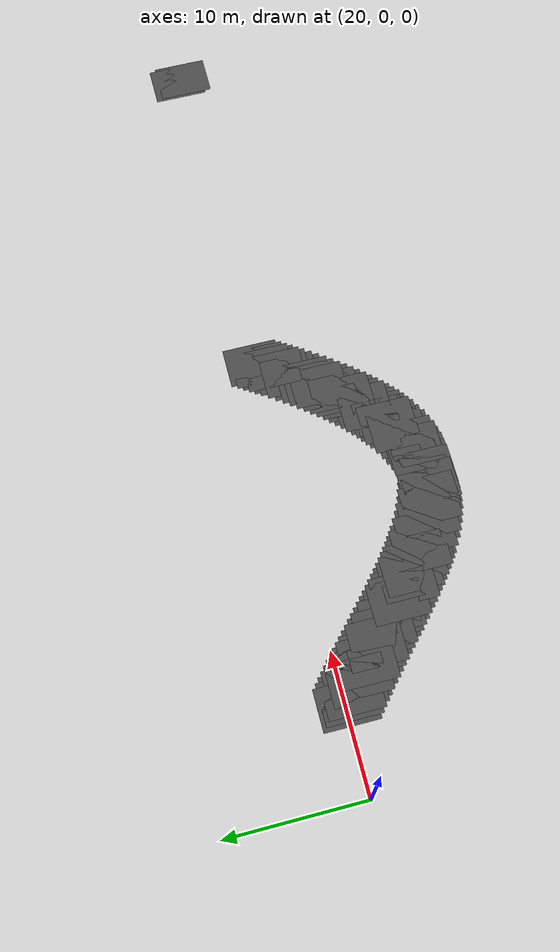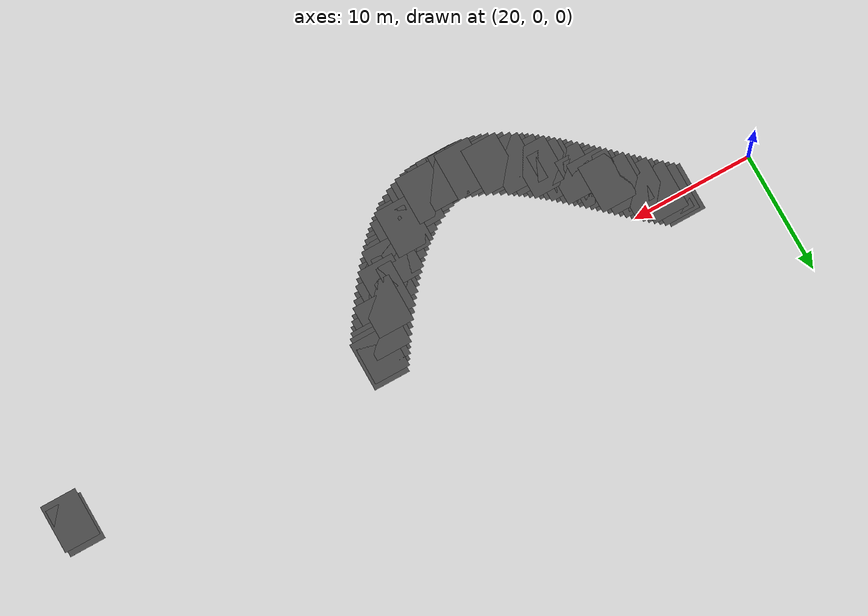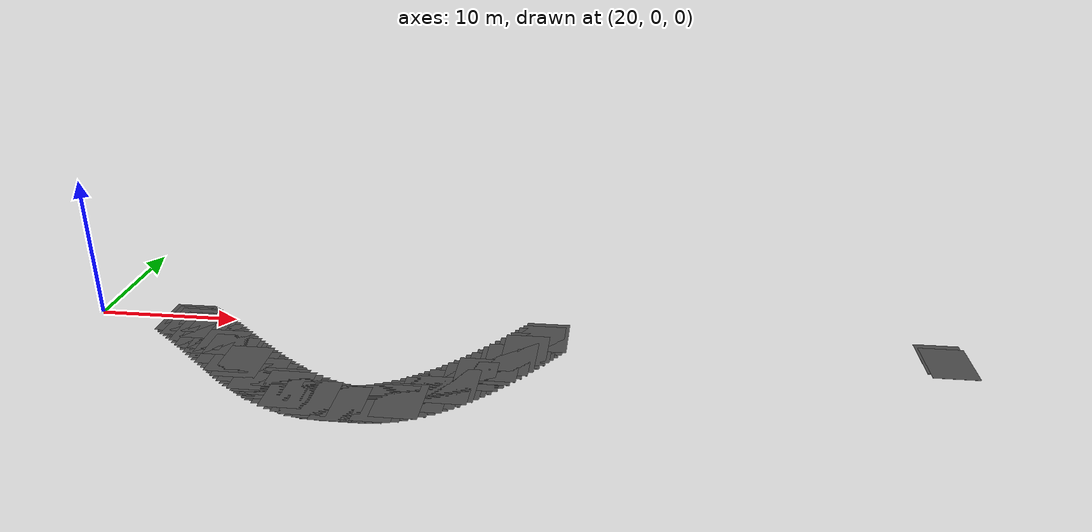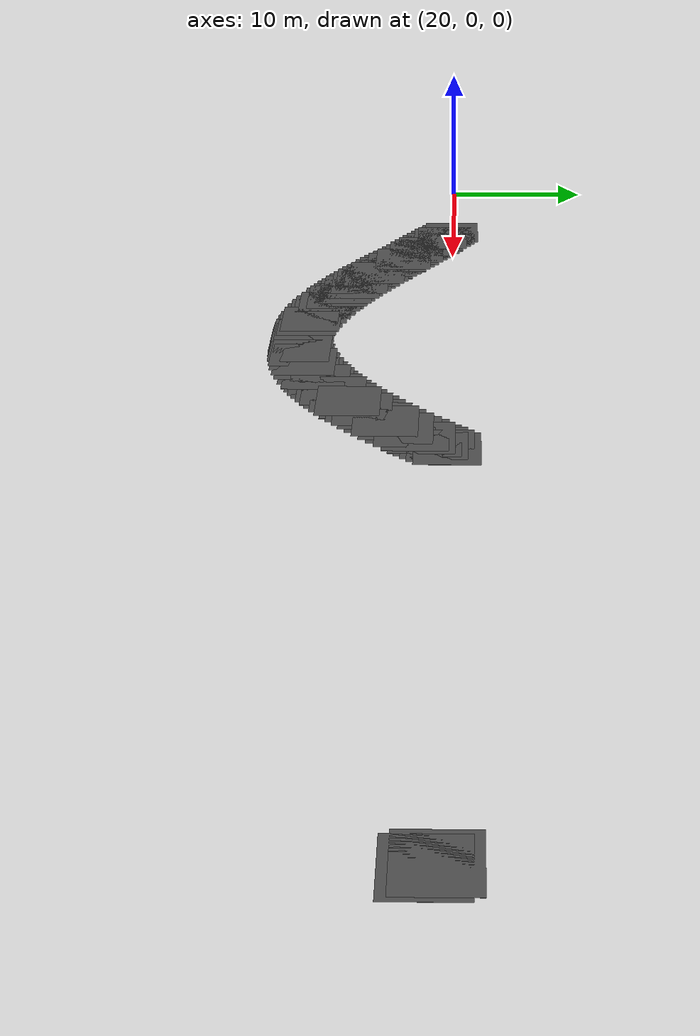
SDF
<sdf version="1.7">
 <world name="default">
  <model name="roadSegment_26_1">
   <static>1</static>
   <link name="link">
    <collision name="collision"><geometry><box><size>3 4 0.01</size></box></geometry></collision>
    <visual name="visual">
     <cast_shadows>0</cast_shadows>
     <geometry><box><size>3 4 0.01</size></box></geometry>
     <material>
      <script>
       <uri>model://asphalt_plane/materials/scripts</uri>
       <uri>model://asphalt_plane/materials/textures</uri>
       <name>vrc/asphalt</name>
      </script>
     </material>
    </visual>
   </link>
   <pose>26.3333 -0.13581 0 0 -0 0</pose>
  </model>
  <model name="roadSegment_26_2">
   <static>1</static>
   <link name="link">
    <collision name="collision"><geometry><box><size>3 4 0.01</size></box></geometry></collision>
    <visual name="visual">
     <cast_shadows>0</cast_shadows>
     <geometry><box><size>3 4 0.01</size></box></geometry>
     <material>
      <script>
       <uri>model://asphalt_plane/materials/scripts</uri>
       <uri>model://asphalt_plane/materials/textures</uri>
       <name>vrc/asphalt</name>
      </script>
     </material>
    </visual>
   </link>
   <pose>26.6667 -0.403848 0 0 -0 0</pose>
  </model>
  <model name="roadSegment_27_0">
   <static>1</static>
   <link name="link">
    <collision name="collision"><geometry><box><size>3 4 0.01</size></box></geometry></collision>
    <visual name="visual">
     <cast_shadows>0</cast_shadows>
     <geometry><box><size>3 4 0.01</size></box></geometry>
     <material>
      <script>
       <uri>model://asphalt_plane/materials/scripts</uri>
       <uri>model://asphalt_plane/materials/textures</uri>
       <name>vrc/asphalt</name>
      </script>
     </material>
    </visual>
   </link>
   <pose>27 -0.671887 0 0 -0 0</pose>
  </model>
  <model name="roadSegment_27_1">
   <static>1</static>
   <link name="link">
    <collision name="collision"><geometry><box><size>3 4 0.01</size></box></geometry></collision>
    <visual name="visual">
     <cast_shadows>0</cast_shadows>
     <geometry><box><size>3 4 0.01</size></box></geometry>
     <material>
      <script>
       <uri>model://asphalt_plane/materials/scripts</uri>
       <uri>model://asphalt_plane/materials/textures</uri>
       <name>vrc/asphalt</name>
      </script>
     </material>
    </visual>
   </link>
   <pose>27.3333 -0.956562 0 0 -0 0</pose>
  </model>
  <model name="roadSegment_27_2">
   <static>1</static>
   <link name="link">
    <collision name="collision"><geometry><box><size>3 4 0.01</size></box></geometry></collision>
    <visual name="visual">
     <cast_shadows>0</cast_shadows>
     <geometry><box><size>3 4 0.01</size></box></geometry>
     <material>
      <script>
       <uri>model://asphalt_plane/materials/scripts</uri>
       <uri>model://asphalt_plane/materials/textures</uri>
       <name>vrc/asphalt</name>
      </script>
     </material>
    </visual>
   </link>
   <pose>27.6667 -1.24124 0 0 -0 0</pose>
  </model>
  <model name="roadSegment_28_0">
   <static>1</static>
   <link name="link">
    <collision name="collision"><geometry><box><size>3 4 0.01</size></box></geometry></collision>
    <visual name="visual">
     <cast_shadows>0</cast_shadows>
     <geometry><box><size>3 4 0.01</size></box></geometry>
     <material>
      <script>
       <uri>model://asphalt_plane/materials/scripts</uri>
       <uri>model://asphalt_plane/materials/textures</uri>
       <name>vrc/asphalt</name>
      </script>
     </material>
    </visual>
   </link>
   <pose>28 -1.52591 0 0 -0 0</pose>
  </model>
  <model name="roadSegment_28_1">
   <static>1</static>
   <link name="link">
    <collision name="collision"><geometry><box><size>3 4 0.01</size></box></geometry></collision>
    <visual name="visual">
     <cast_shadows>0</cast_shadows>
     <geometry><box><size>3 4 0.01</size></box></geometry>
     <material>
      <script>
       <uri>model://asphalt_plane/materials/scripts</uri>
       <uri>model://asphalt_plane/materials/textures</uri>
       <name>vrc/asphalt</name>
      </script>
     </material>
    </visual>
   </link>
   <pose>28.3333 -1.82275 0 0 -0 0</pose>
  </model>
  <model name="roadSegment_28_2">
   <static>1</static>
   <link name="link">
    <collision name="collision"><geometry><box><size>3 4 0.01</size></box></geometry></collision>
    <visual name="visual">
     <cast_shadows>0</cast_shadows>
     <geometry><box><size>3 4 0.01</size></box></geometry>
     <material>
      <script>
       <uri>model://asphalt_plane/materials/scripts</uri>
       <uri>model://asphalt_plane/materials/textures</uri>
       <name>vrc/asphalt</name>
      </script>
     </material>
    </visual>
   </link>
   <pose>28.6667 -2.11958 0 0 -0 0</pose>
  </model>
  <model name="roadSegment_29_0">
   <static>1</static>
   <link name="link">
    <collision name="collision"><geometry><box><size>3 4 0.01</size></box></geometry></collision>
    <visual name="visual">
     <cast_shadows>0</cast_shadows>
     <geometry><box><size>3 4 0.01</size></box></geometry>
     <material>
      <script>
       <uri>model://asphalt_plane/materials/scripts</uri>
       <uri>model://asphalt_plane/materials/textures</uri>
       <name>vrc/asphalt</name>
      </script>
     </material>
    </visual>
   </link>
   <pose>29 -2.41641 0 0 -0 0</pose>
  </model>
  <model name="roadSegment_29_1">
   <static>1</static>
   <link name="link">
    <collision name="collision"><geometry><box><size>3 4 0.01</size></box></geometry></collision>
    <visual name="visual">
     <cast_shadows>0</cast_shadows>
     <geometry><box><size>3 4 0.01</size></box></geometry>
     <material>
      <script>
       <uri>model://asphalt_plane/materials/scripts</uri>
       <uri>model://asphalt_plane/materials/textures</uri>
       <name>vrc/asphalt</name>
      </script>
     </material>
    </visual>
   </link>
   <pose>29.3333 -2.72047 0 0 -0 0</pose>
  </model>
  <model name="roadSegment_29_2">
   <static>1</static>
   <link name="link">
    <collision name="collision"><geometry><box><size>3 4 0.01</size></box></geometry></collision>
    <visual name="visual">
     <cast_shadows>0</cast_shadows>
     <geometry><box><size>3 4 0.01</size></box></geometry>
     <material>
      <script>
       <uri>model://asphalt_plane/materials/scripts</uri>
       <uri>model://asphalt_plane/materials/textures</uri>
       <name>vrc/asphalt</name>
      </script>
     </material>
    </visual>
   </link>
   <pose>29.6667 -3.02453 0 0 -0 0</pose>
  </model>
  <model name="roadSegment_30_0">
   <static>1</static>
   <link name="link">
    <collision name="collision"><geometry><box><size>3 4 0.01</size></box></geometry></collision>
    <visual name="visual">
     <cast_shadows>0</cast_shadows>
     <geometry><box><size>3 4 0.01</size></box></geometry>
     <material>
      <script>
       <uri>model://asphalt_plane/materials/scripts</uri>
       <uri>model://asphalt_plane/materials/textures</uri>
       <name>vrc/asphalt</name>
      </script>
     </material>
    </visual>
   </link>
   <pose>30 -3.32859 0 0 -0 0</pose>
  </model>
  <model name="roadSegment_30_1">
   <static>1</static>
   <link name="link">
    <collision name="collision"><geometry><box><size>3 4 0.01</size></box></geometry></collision>
    <visual name="visual">
     <cast_shadows>0</cast_shadows>
     <geometry><box><size>3 4 0.01</size></box></geometry>
     <material>
      <script>
       <uri>model://asphalt_plane/materials/scripts</uri>
       <uri>model://asphalt_plane/materials/textures</uri>
       <name>vrc/asphalt</name>
      </script>
     </material>
    </visual>
   </link>
   <pose>30.3333 -3.63456 0 0 -0 0</pose>
  </model>
  <model name="roadSegment_30_2">
   <static>1</static>
   <link name="link">
    <collision name="collision"><geometry><box><size>3 4 0.01</size></box></geometry></collision>
    <visual name="visual">
     <cast_shadows>0</cast_shadows>
     <geometry><box><size>3 4 0.01</size></box></geometry>
     <material>
      <script>
       <uri>model://asphalt_plane/materials/scripts</uri>
       <uri>model://asphalt_plane/materials/textures</uri>
       <name>vrc/asphalt</name>
      </script>
     </material>
    </visual>
   </link>
   <pose>30.6667 -3.94054 0 0 -0 0</pose>
  </model>
  <model name="roadSegment_31_0">
   <static>1</static>
   <link name="link">
    <collision name="collision"><geometry><box><size>3 4 0.01</size></box></geometry></collision>
    <visual name="visual">
     <cast_shadows>0</cast_shadows>
     <geometry><box><size>3 4 0.01</size></box></geometry>
     <material>
      <script>
       <uri>model://asphalt_plane/materials/scripts</uri>
       <uri>model://asphalt_plane/materials/textures</uri>
       <name>vrc/asphalt</name>
      </script>
     </material>
    </visual>
   </link>
   <pose>31 -4.24651 0 0 -0 0</pose>
  </model>
  <model name="roadSegment_31_1">
   <static>1</static>
   <link name="link">
    <collision name="collision"><geometry><box><size>3 4 0.01</size></box></geometry></collision>
    <visual name="visual">
     <cast_shadows>0</cast_shadows>
     <geometry><box><size>3 4 0.01</size></box></geometry>
     <material>
      <script>
       <uri>model://asphalt_plane/materials/scripts</uri>
       <uri>model://asphalt_plane/materials/textures</uri>
       <name>vrc/asphalt</name>
      </script>
     </material>
    </visual>
   </link>
   <pose>31.3333 -4.54881 0 0 -0 0</pose>
  </model>
  <model name="roadSegment_31_2">
   <static>1</static>
   <link name="link">
    <collision name="collision"><geometry><box><size>3 4 0.01</size></box></geometry></collision>
    <visual name="visual">
     <cast_shadows>0</cast_shadows>
     <geometry><box><size>3 4 0.01</size></box></geometry>
     <material>
      <script>
       <uri>model://asphalt_plane/materials/scripts</uri>
       <uri>model://asphalt_plane/materials/textures</uri>
       <name>vrc/asphalt</name>
      </script>
     </material>
    </visual>
   </link>
   <pose>31.6667 -4.8511 0 0 -0 0</pose>
  </model>
  <model name="roadSegment_32_0">
   <static>1</static>
   <link name="link">
    <collision name="collision"><geometry><box><size>3 4 0.01</size></box></geometry></collision>
    <visual name="visual">
     <cast_shadows>0</cast_shadows>
     <geometry><box><size>3 4 0.01</size></box></geometry>
     <material>
      <script>
       <uri>model://asphalt_plane/materials/scripts</uri>
       <uri>model://asphalt_plane/materials/textures</uri>
       <name>vrc/asphalt</name>
      </script>
     </material>
    </visual>
   </link>
   <pose>32 -5.1534 0 0 -0 0</pose>
  </model>
  <model name="roadSegment_32_1">
   <static>1</static>
   <link name="link">
    <collision name="collision"><geometry><box><size>3 4 0.01</size></box></geometry></collision>
    <visual name="visual">
     <cast_shadows>0</cast_shadows>
     <geometry><box><size>3 4 0.01</size></box></geometry>
     <material>
      <script>
       <uri>model://asphalt_plane/materials/scripts</uri>
       <uri>model://asphalt_plane/materials/textures</uri>
       <name>vrc/asphalt</name>
      </script>
     </material>
    </visual>
   </link>
   <pose>32.3333 -5.44624 0 0 -0 0</pose>
  </model>
  <model name="roadSegment_32_2">
   <static>1</static>
   <link name="link">
    <collision name="collision"><geometry><box><size>3 4 0.01</size></box></geometry></collision>
    <visual name="visual">
     <cast_shadows>0</cast_shadows>
     <geometry><box><size>3 4 0.01</size></box></geometry>
     <material>
      <script>
       <uri>model://asphalt_plane/materials/scripts</uri>
       <uri>model://asphalt_plane/materials/textures</uri>
       <name>vrc/asphalt</name>
      </script>
     </material>
    </visual>
   </link>
   <pose>32.6667 -5.73907 0 0 -0 0</pose>
  </model>
  <model name="roadSegment_33_0">
   <static>1</static>
   <link name="link">
    <collision name="collision"><geometry><box><size>3 4 0.01</size></box></geometry></collision>
    <visual name="visual">
     <cast_shadows>0</cast_shadows>
     <geometry><box><size>3 4 0.01</size></box></geometry>
     <material>
      <script>
       <uri>model://asphalt_plane/materials/scripts</uri>
       <uri>model://asphalt_plane/materials/textures</uri>
       <name>vrc/asphalt</name>
      </script>
     </material>
    </visual>
   </link>
   <pose>33 -6.03191 0 0 -0 0</pose>
  </model>
  <model name="roadSegment_33_1">
   <static>1</static>
   <link name="link">
    <collision name="collision"><geometry><box><size>3 4 0.01</size></box></geometry></collision>
    <visual name="visual">
     <cast_shadows>0</cast_shadows>
     <geometry><box><size>3 4 0.01</size></box></geometry>
     <material>
      <script>
       <uri>model://asphalt_plane/materials/scripts</uri>
       <uri>model://asphalt_plane/materials/textures</uri>
       <name>vrc/asphalt</name>
      </script>
     </material>
    </visual>
   </link>
   <pose>33.3333 -6.30942 0 0 -0 0</pose>
  </model>
  <model name="roadSegment_33_2">
   <static>1</static>
   <link name="link">
    <collision name="collision"><geometry><box><size>3 4 0.01</size></box></geometry></collision>
    <visual name="visual">
     <cast_shadows>0</cast_shadows>
     <geometry><box><size>3 4 0.01</size></box></geometry>
     <material>
      <script>
       <uri>model://asphalt_plane/materials/scripts</uri>
       <uri>model://asphalt_plane/materials/textures</uri>
       <name>vrc/asphalt</name>
      </script>
     </material>
    </visual>
   </link>
   <pose>33.6667 -6.58693 0 0 -0 0</pose>
  </model>
  <model name="roadSegment_34_0">
   <static>1</static>
   <link name="link">
    <collision name="collision"><geometry><box><size>3 4 0.01</size></box></geometry></collision>
    <visual name="visual">
     <cast_shadows>0</cast_shadows>
     <geometry><box><size>3 4 0.01</size></box></geometry>
     <material>
      <script>
       <uri>model://asphalt_plane/materials/scripts</uri>
       <uri>model://asphalt_plane/materials/textures</uri>
       <name>vrc/asphalt</name>
      </script>
     </material>
    </visual>
   </link>
   <pose>34 -6.86444 0 0 -0 0</pose>
  </model>
  <model name="roadSegment_34_1">
   <static>1</static>
   <link name="link">
    <collision name="collision"><geometry><box><size>3 4 0.01</size></box></geometry></collision>
    <visual name="visual">
     <cast_shadows>0</cast_shadows>
     <geometry><box><size>3 4 0.01</size></box></geometry>
     <material>
      <script>
       <uri>model://asphalt_plane/materials/scripts</uri>
       <uri>model://asphalt_plane/materials/textures</uri>
       <name>vrc/asphalt</name>
      </script>
     </material>
    </visual>
   </link>
   <pose>34.3333 -7.12079 0 0 -0 0</pose>
  </model>
  <model name="roadSegment_34_2">
   <static>1</static>
   <link name="link">
    <collision name="collision"><geometry><box><size>3 4 0.01</size></box></geometry></collision>
    <visual name="visual">
     <cast_shadows>0</cast_shadows>
     <geometry><box><size>3 4 0.01</size></box></geometry>
     <material>
      <script>
       <uri>model://asphalt_plane/materials/scripts</uri>
       <uri>model://asphalt_plane/materials/textures</uri>
       <name>vrc/asphalt</name>
      </script>
     </material>
    </visual>
   </link>
   <pose>34.6667 -7.37714 0 0 -0 0</pose>
  </model>
  <model name="roadSegment_35_0">
   <static>1</static>
   <link name="link">
    <collision name="collision"><geometry><box><size>3 4 0.01</size></box></geometry></collision>
    <visual name="visual">
     <cast_shadows>0</cast_shadows>
     <geometry><box><size>3 4 0.01</size></box></geometry>
     <material>
      <script>
       <uri>model://asphalt_plane/materials/scripts</uri>
       <uri>model://asphalt_plane/materials/textures</uri>
       <name>vrc/asphalt</name>
      </script>
     </material>
    </visual>
   </link>
   <pose>35 -7.63349 0 0 -0 0</pose>
  </model>
  <model name="roadSegment_35_1">
   <static>1</static>
   <link name="link">
    <collision name="collision"><geometry><box><size>3 4 0.01</size></box></geometry></collision>
    <visual name="visual">
     <cast_shadows>0</cast_shadows>
     <geometry><box><size>3 4 0.01</size></box></geometry>
     <material>
      <script>
       <uri>model://asphalt_plane/materials/scripts</uri>
       <uri>model://asphalt_plane/materials/textures</uri>
       <name>vrc/asphalt</name>
      </script>
     </material>
    </visual>
   </link>
   <pose>35.3333 -7.86296 0 0 -0 0</pose>
  </model>
  <model name="roadSegment_35_2">
   <static>1</static>
   <link name="link">
    <collision name="collision"><geometry><box><size>3 4 0.01</size></box></geometry></collision>
    <visual name="visual">
     <cast_shadows>0</cast_shadows>
     <geometry><box><size>3 4 0.01</size></box></geometry>
     <material>
      <script>
       <uri>model://asphalt_plane/materials/scripts</uri>
       <uri>model://asphalt_plane/materials/textures</uri>
       <name>vrc/asphalt</name>
      </script>
     </material>
    </visual>
   </link>
   <pose>35.6667 -8.09244 0 0 -0 0</pose>
  </model>
  <model name="roadSegment_36_0">
   <static>1</static>
   <link name="link">
    <collision name="collision"><geometry><box><size>3 4 0.01</size></box></geometry></collision>
    <visual name="visual">
     <cast_shadows>0</cast_shadows>
     <geometry><box><size>3 4 0.01</size></box></geometry>
     <material>
      <script>
       <uri>model://asphalt_plane/materials/scripts</uri>
       <uri>model://asphalt_plane/materials/textures</uri>
       <name>vrc/asphalt</name>
      </script>
     </material>
    </visual>
   </link>
   <pose>36 -8.32192 0 0 -0 0</pose>
  </model>
  <model name="roadSegment_36_1">
   <static>1</static>
   <link name="link">
    <collision name="collision"><geometry><box><size>3 4 0.01</size></box></geometry></collision>
    <visual name="visual">
     <cast_shadows>0</cast_shadows>
     <geometry><box><size>3 4 0.01</size></box></geometry>
     <material>
      <script>
       <uri>model://asphalt_plane/materials/scripts</uri>
       <uri>model://asphalt_plane/materials/textures</uri>
       <name>vrc/asphalt</name>
      </script>
     </material>
    </visual>
   </link>
   <pose>36.5 -8.61764 0 0 -0 0</pose>
  </model>
  <model name="roadSegment_37_0">
   <static>1</static>
   <link name="link">
    <collision name="collision"><geometry><box><size>3 4 0.01</size></box></geometry></collision>
    <visual name="visual">
     <cast_shadows>0</cast_shadows>
     <geometry><box><size>3 4 0.01</size></box></geometry>
     <material>
      <script>
       <uri>model://asphalt_plane/materials/scripts</uri>
       <uri>model://asphalt_plane/materials/textures</uri>
       <name>vrc/asphalt</name>
      </script>
     </material>
    </visual>
   </link>
   <pose>37 -8.91337 0 0 -0 0</pose>
  </model>
  <model name="roadSegment_37_1">
   <static>1</static>
   <link name="link">
    <collision name="collision"><geometry><box><size>3 4 0.01</size></box></geometry></collision>
    <visual name="visual">
     <cast_shadows>0</cast_shadows>
     <geometry><box><size>3 4 0.01</size></box></geometry>
     <material>
      <script>
       <uri>model://asphalt_plane/materials/scripts</uri>
       <uri>model://asphalt_plane/materials/textures</uri>
       <name>vrc/asphalt</name>
      </script>
     </material>
    </visual>
   </link>
   <pose>37.5 -9.15295 0 0 -0 0</pose>
  </model>
  <model name="roadSegment_38_0">
   <static>1</static>
   <link name="link">
    <collision name="collision"><geometry><box><size>3 4 0.01</size></box></geometry></collision>
    <visual name="visual">
     <cast_shadows>0</cast_shadows>
     <geometry><box><size>3 4 0.01</size></box></geometry>
     <material>
      <script>
       <uri>model://asphalt_plane/materials/scripts</uri>
       <uri>model://asphalt_plane/materials/textures</uri>
       <name>vrc/asphalt</name>
      </script>
     </material>
    </visual>
   </link>
   <pose>38 -9.39252 0 0 -0 0</pose>
  </model>
  <model name="roadSegment_38_1">
   <static>1</static>
   <link name="link">
    <collision name="collision"><geometry><box><size>3 4 0.01</size></box></geometry></collision>
    <visual name="visual">
     <cast_shadows>0</cast_shadows>
     <geometry><box><size>3 4 0.01</size></box></geometry>
     <material>
      <script>
       <uri>model://asphalt_plane/materials/scripts</uri>
       <uri>model://asphalt_plane/materials/textures</uri>
       <name>vrc/asphalt</name>
      </script>
     </material>
    </visual>
   </link>
   <pose>38.5 -9.56899 0 0 -0 0</pose>
  </model>
  <model name="roadSegment_39_0">
   <static>1</static>
   <link name="link">
    <collision name="collision"><geometry><box><size>3 4 0.01</size></box></geometry></collision>
    <visual name="visual">
     <cast_shadows>0</cast_shadows>
     <geometry><box><size>3 4 0.01</size></box></geometry>
     <material>
      <script>
       <uri>model://asphalt_plane/materials/scripts</uri>
       <uri>model://asphalt_plane/materials/textures</uri>
       <name>vrc/asphalt</name>
      </script>
     </material>
    </visual>
   </link>
   <pose>39 -9.74546 0 0 -0 0</pose>
  </model>
  <model name="roadSegment_39_1">
   <static>1</static>
   <link name="link">
    <collision name="collision"><geometry><box><size>3 4 0.01</size></box></geometry></collision>
    <visual name="visual">
     <cast_shadows>0</cast_shadows>
     <geometry><box><size>3 4 0.01</size></box></geometry>
     <material>
      <script>
       <uri>model://asphalt_plane/materials/scripts</uri>
       <uri>model://asphalt_plane/materials/textures</uri>
       <name>vrc/asphalt</name>
      </script>
     </material>
    </visual>
   </link>
   <pose>39.5 -9.8527 0 0 -0 0</pose>
  </model>
  <model name="roadSegment_40_0">
   <static>1</static>
   <link name="link">
    <collision name="collision"><geometry><box><size>3 4 0.01</size></box></geometry></collision>
    <visual name="visual">
     <cast_shadows>0</cast_shadows>
     <geometry><box><size>3 4 0.01</size></box></geometry>
     <material>
      <script>
       <uri>model://asphalt_plane/materials/scripts</uri>
       <uri>model://asphalt_plane/materials/textures</uri>
       <name>vrc/asphalt</name>
      </script>
     </material>
    </visual>
   </link>
   <pose>40 -9.95995 0 0 -0 0</pose>
  </model>
  <model name="roadSegment_40_1">
   <static>1</static>
   <link name="link">
    <collision name="collision"><geometry><box><size>3 4 0.01</size></box></geometry></collision>
    <visual name="visual">
     <cast_shadows>0</cast_shadows>
     <geometry><box><size>3 4 0.01</size></box></geometry>
     <material>
      <script>
       <uri>model://asphalt_plane/materials/scripts</uri>
       <uri>model://asphalt_plane/materials/textures</uri>
       <name>vrc/asphalt</name>
      </script>
     </material>
    </visual>
   </link>
   <pose>40.5 -9.99283 0 0 -0 0</pose>
  </model>
  <model name="roadSegment_41_0">
   <static>1</static>
   <link name="link">
    <collision name="collision"><geometry><box><size>3 4 0.01</size></box></geometry></collision>
    <visual name="visual">
     <cast_shadows>0</cast_shadows>
     <geometry><box><size>3 4 0.01</size></box></geometry>
     <material>
      <script>
       <uri>model://asphalt_plane/materials/scripts</uri>
       <uri>model://asphalt_plane/materials/textures</uri>
       <name>vrc/asphalt</name>
      </script>
     </material>
    </visual>
   </link>
   <pose>41 -10.0257 0 0 -0 0</pose>
  </model>
  <model name="roadSegment_41_1">
   <static>1</static>
   <link name="link">
    <collision name="collision"><geometry><box><size>3 4 0.01</size></box></geometry></collision>
    <visual name="visual">
     <cast_shadows>0</cast_shadows>
     <geometry><box><size>3 4 0.01</size></box></geometry>
     <material>
      <script>
       <uri>model://asphalt_plane/materials/scripts</uri>
       <uri>model://asphalt_plane/materials/textures</uri>
       <name>vrc/asphalt</name>
      </script>
     </material>
    </visual>
   </link>
   <pose>41.5 -9.98021 0 0 -0 0</pose>
  </model>
  <model name="roadSegment_42_0">
   <static>1</static>
   <link name="link">
    <collision name="collision"><geometry><box><size>3 4 0.01</size></box></geometry></collision>
    <visual name="visual">
     <cast_shadows>0</cast_shadows>
     <geometry><box><size>3 4 0.01</size></box></geometry>
     <material>
      <script>
       <uri>model://asphalt_plane/materials/scripts</uri>
       <uri>model://asphalt_plane/materials/textures</uri>
       <name>vrc/asphalt</name>
      </script>
     </material>
    </visual>
   </link>
   <pose>42 -9.93471 0 0 -0 0</pose>
  </model>
  <model name="roadSegment_42_1">
   <static>1</static>
   <link name="link">
    <collision name="collision"><geometry><box><size>3 4 0.01</size></box></geometry></collision>
    <visual name="visual">
     <cast_shadows>0</cast_shadows>
     <geometry><box><size>3 4 0.01</size></box></geometry>
     <material>
      <script>
       <uri>model://asphalt_plane/materials/scripts</uri>
       <uri>model://asphalt_plane/materials/textures</uri>
       <name>vrc/asphalt</name>
      </script>
     </material>
    </visual>
   </link>
   <pose>42.5 -9.80802 0 0 -0 0</pose>
  </model>
  <model name="roadSegment_43_0">
   <static>1</static>
   <link name="link">
    <collision name="collision"><geometry><box><size>3 4 0.01</size></box></geometry></collision>
    <visual name="visual">
     <cast_shadows>0</cast_shadows>
     <geometry><box><size>3 4 0.01</size></box></geometry>
     <material>
      <script>
       <uri>model://asphalt_plane/materials/scripts</uri>
       <uri>model://asphalt_plane/materials/textures</uri>
       <name>vrc/asphalt</name>
      </script>
     </material>
    </visual>
   </link>
   <pose>43 -9.68132 0 0 -0 0</pose>
  </model>
  <model name="roadSegment_43_1">
   <static>1</static>
   <link name="link">
    <collision name="collision"><geometry><box><size>3 4 0.01</size></box></geometry></collision>
    <visual name="visual">
     <cast_shadows>0</cast_shadows>
     <geometry><box><size>3 4 0.01</size></box></geometry>
     <material>
      <script>
       <uri>model://asphalt_plane/materials/scripts</uri>
       <uri>model://asphalt_plane/materials/textures</uri>
       <name>vrc/asphalt</name>
      </script>
     </material>
    </visual>
   </link>
   <pose>43.5 -9.47194 0 0 -0 0</pose>
  </model>
  <model name="roadSegment_44_0">
   <static>1</static>
   <link name="link">
    <collision name="collision"><geometry><box><size>3 4 0.01</size></box></geometry></collision>
    <visual name="visual">
     <cast_shadows>0</cast_shadows>
     <geometry><box><size>3 4 0.01</size></box></geometry>
     <material>
      <script>
       <uri>model://asphalt_plane/materials/scripts</uri>
       <uri>model://asphalt_plane/materials/textures</uri>
       <name>vrc/asphalt</name>
      </script>
     </material>
    </visual>
   </link>
   <pose>44 -9.26255 0 0 -0 0</pose>
  </model>
  <model name="roadSegment_44_1">
   <static>1</static>
   <link name="link">
    <collision name="collision"><geometry><box><size>3 4 0.01</size></box></geometry></collision>
    <visual name="visual">
     <cast_shadows>0</cast_shadows>
     <geometry><box><size>3 4 0.01</size></box></geometry>
     <material>
      <script>
       <uri>model://asphalt_plane/materials/scripts</uri>
       <uri>model://asphalt_plane/materials/textures</uri>
       <name>vrc/asphalt</name>
      </script>
     </material>
    </visual>
   </link>
   <pose>44.5 -8.97035 0 0 -0 0</pose>
  </model>
  <model name="roadSegment_45_0">
   <static>1</static>
   <link name="link">
    <collision name="collision"><geometry><box><size>3 4 0.01</size></box></geometry></collision>
    <visual name="visual">
     <cast_shadows>0</cast_shadows>
     <geometry><box><size>3 4 0.01</size></box></geometry>
     <material>
      <script>
       <uri>model://asphalt_plane/materials/scripts</uri>
       <uri>model://asphalt_plane/materials/textures</uri>
       <name>vrc/asphalt</name>
      </script>
     </material>
    </visual>
   </link>
   <pose>45 -8.67815 0 0 -0 0</pose>
  </model>
  <model name="roadSegment_45_1">
   <static>1</static>
   <link name="link">
    <collision name="collision"><geometry><box><size>3 4 0.01</size></box></geometry></collision>
    <visual name="visual">
     <cast_shadows>0</cast_shadows>
     <geometry><box><size>3 4 0.01</size></box></geometry>
     <material>
      <script>
       <uri>model://asphalt_plane/materials/scripts</uri>
       <uri>model://asphalt_plane/materials/textures</uri>
       <name>vrc/asphalt</name>
      </script>
     </material>
    </visual>
   </link>
   <pose>45.3333 -8.42901 0 0 -0 0</pose>
  </model>
  <model name="roadSegment_45_2">
   <static>1</static>
   <link name="link">
    <collision name="collision"><geometry><box><size>3 4 0.01</size></box></geometry></collision>
    <visual name="visual">
     <cast_shadows>0</cast_shadows>
     <geometry><box><size>3 4 0.01</size></box></geometry>
     <material>
      <script>
       <uri>model://asphalt_plane/materials/scripts</uri>
       <uri>model://asphalt_plane/materials/textures</uri>
       <name>vrc/asphalt</name>
      </script>
     </material>
    </visual>
   </link>
   <pose>45.6667 -8.17987 0 0 -0 0</pose>
  </model>
  <model name="roadSegment_46_0">
   <static>1</static>
   <link name="link">
    <collision name="collision"><geometry><box><size>3 4 0.01</size></box></geometry></collision>
    <visual name="visual">
     <cast_shadows>0</cast_shadows>
     <geometry><box><size>3 4 0.01</size></box></geometry>
     <material>
      <script>
       <uri>model://asphalt_plane/materials/scripts</uri>
       <uri>model://asphalt_plane/materials/textures</uri>
       <name>vrc/asphalt</name>
      </script>
     </material>
    </visual>
   </link>
   <pose>46 -7.93073 0 0 -0 0</pose>
  </model>
  <model name="roadSegment_46_1">
   <static>1</static>
   <link name="link">
    <collision name="collision"><geometry><box><size>3 4 0.01</size></box></geometry></collision>
    <visual name="visual">
     <cast_shadows>0</cast_shadows>
     <geometry><box><size>3 4 0.01</size></box></geometry>
     <material>
      <script>
       <uri>model://asphalt_plane/materials/scripts</uri>
       <uri>model://asphalt_plane/materials/textures</uri>
       <name>vrc/asphalt</name>
      </script>
     </material>
    </visual>
   </link>
   <pose>46.3333 -7.62909 0 0 -0 0</pose>
  </model>
  <model name="roadSegment_46_2">
   <static>1</static>
   <link name="link">
    <collision name="collision"><geometry><box><size>3 4 0.01</size></box></geometry></collision>
    <visual name="visual">
     <cast_shadows>0</cast_shadows>
     <geometry><box><size>3 4 0.01</size></box></geometry>
     <material>
      <script>
       <uri>model://asphalt_plane/materials/scripts</uri>
       <uri>model://asphalt_plane/materials/textures</uri>
       <name>vrc/asphalt</name>
      </script>
     </material>
    </visual>
   </link>
   <pose>46.6667 -7.32744 0 0 -0 0</pose>
  </model>
  <model name="roadSegment_47_0">
   <static>1</static>
   <link name="link">
    <collision name="collision"><geometry><box><size>3 4 0.01</size></box></geometry></collision>
    <visual name="visual">
     <cast_shadows>0</cast_shadows>
     <geometry><box><size>3 4 0.01</size></box></geometry>
     <material>
      <script>
       <uri>model://asphalt_plane/materials/scripts</uri>
       <uri>model://asphalt_plane/materials/textures</uri>
       <name>vrc/asphalt</name>
      </script>
     </material>
    </visual>
   </link>
   <pose>47 -7.02579 0 0 -0 0</pose>
  </model>
  <model name="roadSegment_47_1">
   <static>1</static>
   <link name="link">
    <collision name="collision"><geometry><box><size>3 4 0.01</size></box></geometry></collision>
    <visual name="visual">
     <cast_shadows>0</cast_shadows>
     <geometry><box><size>3 4 0.01</size></box></geometry>
     <material>
      <script>
       <uri>model://asphalt_plane/materials/scripts</uri>
       <uri>model://asphalt_plane/materials/textures</uri>
       <name>vrc/asphalt</name>
      </script>
     </material>
    </visual>
   </link>
   <pose>47.3333 -6.67444 0 0 -0 0</pose>
  </model>
  <model name="roadSegment_47_2">
   <static>1</static>
   <link name="link">
    <collision name="collision"><geometry><box><size>3 4 0.01</size></box></geometry></collision>
    <visual name="visual">
     <cast_shadows>0</cast_shadows>
     <geometry><box><size>3 4 0.01</size></box></geometry>
     <material>
      <script>
       <uri>model://asphalt_plane/materials/scripts</uri>
       <uri>model://asphalt_plane/materials/textures</uri>
       <name>vrc/asphalt</name>
      </script>
     </material>
    </visual>
   </link>
   <pose>47.6667 -6.32308 0 0 -0 0</pose>
  </model>
  <model name="roadSegment_48_0">
   <static>1</static>
   <link name="link">
    <collision name="collision"><geometry><box><size>3 4 0.01</size></box></geometry></collision>
    <visual name="visual">
     <cast_shadows>0</cast_shadows>
     <geometry><box><size>3 4 0.01</size></box></geometry>
     <material>
      <script>
       <uri>model://asphalt_plane/materials/scripts</uri>
       <uri>model://asphalt_plane/materials/textures</uri>
       <name>vrc/asphalt</name>
      </script>
     </material>
    </visual>
   </link>
   <pose>48 -5.97173 0 0 -0 0</pose>
  </model>
  <model name="roadSegment_48_1">
   <static>1</static>
   <link name="link">
    <collision name="collision"><geometry><box><size>3 4 0.01</size></box></geometry></collision>
    <visual name="visual">
     <cast_shadows>0</cast_shadows>
     <geometry><box><size>3 4 0.01</size></box></geometry>
     <material>
      <script>
       <uri>model://asphalt_plane/materials/scripts</uri>
       <uri>model://asphalt_plane/materials/textures</uri>
       <name>vrc/asphalt</name>
      </script>
     </material>
    </visual>
   </link>
   <pose>48.3333 -5.57441 0 0 -0 0</pose>
  </model>
  <model name="roadSegment_48_2">
   <static>1</static>
   <link name="link">
    <collision name="collision"><geometry><box><size>3 4 0.01</size></box></geometry></collision>
    <visual name="visual">
     <cast_shadows>0</cast_shadows>
     <geometry><box><size>3 4 0.01</size></box></geometry>
     <material>
      <script>
       <uri>model://asphalt_plane/materials/scripts</uri>
       <uri>model://asphalt_plane/materials/textures</uri>
       <name>vrc/asphalt</name>
      </script>
     </material>
    </visual>
   </link>
   <pose>48.6667 -5.17709 0 0 -0 0</pose>
  </model>
  <model name="roadSegment_49_0">
   <static>1</static>
   <link name="link">
    <collision name="collision"><geometry><box><size>3 4 0.01</size></box></geometry></collision>
    <visual name="visual">
     <cast_shadows>0</cast_shadows>
     <geometry><box><size>3 4 0.01</size></box></geometry>
     <material>
      <script>
       <uri>model://asphalt_plane/materials/scripts</uri>
       <uri>model://asphalt_plane/materials/textures</uri>
       <name>vrc/asphalt</name>
      </script>
     </material>
    </visual>
   </link>
   <pose>49 -4.77976 0 0 -0 0</pose>
  </model>
  <model name="roadSegment_49_1">
   <static>1</static>
   <link name="link">
    <collision name="collision"><geometry><box><size>3 4 0.01</size></box></geometry></collision>
    <visual name="visual">
     <cast_shadows>0</cast_shadows>
     <geometry><box><size>3 4 0.01</size></box></geometry>
     <material>
      <script>
       <uri>model://asphalt_plane/materials/scripts</uri>
       <uri>model://asphalt_plane/materials/textures</uri>
       <name>vrc/asphalt</name>
      </script>
     </material>
    </visual>
   </link>
   <pose>49.3333 -4.34113 0 0 -0 0</pose>
  </model>
  <model name="roadSegment_49_2">
   <static>1</static>
   <link name="link">
    <collision name="collision"><geometry><box><size>3 4 0.01</size></box></geometry></collision>
    <visual name="visual">
     <cast_shadows>0</cast_shadows>
     <geometry><box><size>3 4 0.01</size></box></geometry>
     <material>
      <script>
       <uri>model://asphalt_plane/materials/scripts</uri>
       <uri>model://asphalt_plane/materials/textures</uri>
       <name>vrc/asphalt</name>
      </script>
     </material>
    </visual>
   </link>
   <pose>49.6667 -3.9025 0 0 -0 0</pose>
  </model>
  <model name="roadSegment_50_0">
   <static>1</static>
   <link name="link">
    <collision name="collision"><geometry><box><size>3 4 0.01</size></box></geometry></collision>
    <visual name="visual">
     <cast_shadows>0</cast_shadows>
     <geometry><box><size>3 4 0.01</size></box></geometry>
     <material>
      <script>
       <uri>model://asphalt_plane/materials/scripts</uri>
       <uri>model://asphalt_plane/materials/textures</uri>
       <name>vrc/asphalt</name>
      </script>
     </material>
    </visual>
   </link>
   <pose>50 -3.46387 0 0 -0 0</pose>
  </model>
  <model name="roadSegment_50_1">
   <static>1</static>
   <link name="link">
    <collision name="collision"><geometry><box><size>3 4 0.01</size></box></geometry></collision>
    <visual name="visual">
     <cast_shadows>0</cast_shadows>
     <geometry><box><size>3 4 0.01</size></box></geometry>
     <material>
      <script>
       <uri>model://asphalt_plane/materials/scripts</uri>
       <uri>model://asphalt_plane/materials/textures</uri>
       <name>vrc/asphalt</name>
      </script>
     </material>
    </visual>
   </link>
   <pose>50.3333 -2.98944 0 0 -0 0</pose>
  </model>
  <model name="roadSegment_50_2">
   <static>1</static>
   <link name="link">
    <collision name="collision"><geometry><box><size>3 4 0.01</size></box></geometry></collision>
    <visual name="visual">
     <cast_shadows>0</cast_shadows>
     <geometry><box><size>3 4 0.01</size></box></geometry>
     <material>
      <script>
       <uri>model://asphalt_plane/materials/scripts</uri>
       <uri>model://asphalt_plane/materials/textures</uri>
       <name>vrc/asphalt</name>
      </script>
     </material>
    </visual>
   </link>
   <pose>50.6667 -2.51501 0 0 -0 0</pose>
  </model>
  <model name="roadSegment_51_0">
   <static>1</static>
   <link name="link">
    <collision name="collision"><geometry><box><size>3 4 0.01</size></box></geometry></collision>
    <visual name="visual">
     <cast_shadows>0</cast_shadows>
     <geometry><box><size>3 4 0.01</size></box></geometry>
     <material>
      <script>
       <uri>model://asphalt_plane/materials/scripts</uri>
       <uri>model://asphalt_plane/materials/textures</uri>
       <name>vrc/asphalt</name>
      </script>
     </material>
    </visual>
   </link>
   <pose>51 -2.04057 0 0 -0 0</pose>
  </model>
  <model name="roadSegment_51_1">
   <static>1</static>
   <link name="link">
    <collision name="collision"><geometry><box><size>3 4 0.01</size></box></geometry></collision>
    <visual name="visual">
     <cast_shadows>0</cast_shadows>
     <geometry><box><size>3 4 0.01</size></box></geometry>
     <material>
      <script>
       <uri>model://asphalt_plane/materials/scripts</uri>
       <uri>model://asphalt_plane/materials/textures</uri>
       <name>vrc/asphalt</name>
      </script>
     </material>
    </visual>
   </link>
   <pose>51.25 -1.66263 0 0 -0 0</pose>
  </model>
  <model name="roadSegment_51_2">
   <static>1</static>
   <link name="link">
    <collision name="collision"><geometry><box><size>3 4 0.01</size></box></geometry></collision>
    <visual name="visual">
     <cast_shadows>0</cast_shadows>
     <geometry><box><size>3 4 0.01</size></box></geometry>
     <material>
      <script>
       <uri>model://asphalt_plane/materials/scripts</uri>
       <uri>model://asphalt_plane/materials/textures</uri>
       <name>vrc/asphalt</name>
      </script>
     </material>
    </visual>
   </link>
   <pose>51.5 -1.28469 0 0 -0 0</pose>
  </model>
  <model name="roadSegment_51_3">
   <static>1</static>
   <link name="link">
    <collision name="collision"><geometry><box><size>3 4 0.01</size></box></geometry></collision>
    <visual name="visual">
     <cast_shadows>0</cast_shadows>
     <geometry><box><size>3 4 0.01</size></box></geometry>
     <material>
      <script>
       <uri>model://asphalt_plane/materials/scripts</uri>
       <uri>model://asphalt_plane/materials/textures</uri>
       <name>vrc/asphalt</name>
      </script>
     </material>
    </visual>
   </link>
   <pose>51.75 -0.906745 0 0 -0 0</pose>
  </model>
  <model name="roadSegment_52_0">
   <static>1</static>
   <link name="link">
    <collision name="collision"><geometry><box><size>3 4 0.01</size></box></geometry></collision>
    <visual name="visual">
     <cast_shadows>0</cast_shadows>
     <geometry><box><size>3 4 0.01</size></box></geometry>
     <material>
      <script>
       <uri>model://asphalt_plane/materials/scripts</uri>
       <uri>model://asphalt_plane/materials/textures</uri>
       <name>vrc/asphalt</name>
      </script>
     </material>
    </visual>
   </link>
   <pose>52 -0.528802 0 0 -0 0</pose>
  </model>
  <model name="roadSegment_52_1">
   <static>1</static>
   <link name="link">
    <collision name="collision"><geometry><box><size>3 4 0.01</size></box></geometry></collision>
    <visual name="visual">
     <cast_shadows>0</cast_shadows>
     <geometry><box><size>3 4 0.01</size></box></geometry>
     <material>
      <script>
       <uri>model://asphalt_plane/materials/scripts</uri>
       <uri>model://asphalt_plane/materials/textures</uri>
       <name>vrc/asphalt</name>
      </script>
     </material>
    </visual>
   </link>
   <pose>52.25 -0.133998 0 0 -0 0</pose>
  </model>
  <model name="roadSegment_78_3">
   <static>1</static>
   <link name="link">
    <collision name="collision"><geometry><box><size>3 4 0.01</size></box></geometry></collision>
    <visual name="visual">
     <cast_shadows>0</cast_shadows>
     <geometry><box><size>3 4 0.01</size></box></geometry>
     <material>
      <script>
       <uri>model://asphalt_plane/materials/scripts</uri>
       <uri>model://asphalt_plane/materials/textures</uri>
       <name>vrc/asphalt</name>
      </script>
     </material>
    </visual>
   </link>
   <pose>78.6 -0.223171 0 0 -0 0</pose>
  </model>
  <model name="roadSegment_78_4">
   <static>1</static>
   <link name="link">
    <collision name="collision"><geometry><box><size>3 4 0.01</size></box></geometry></collision>
    <visual name="visual">
     <cast_shadows>0</cast_shadows>
     <geometry><box><size>3 4 0.01</size></box></geometry>
     <material>
      <script>
       <uri>model://asphalt_plane/materials/scripts</uri>
       <uri>model://asphalt_plane/materials/textures</uri>
       <name>vrc/asphalt</name>
      </script>
     </material>
    </visual>
   </link>
   <pose>78.8 -0.694026 0 0 -0 0</pose>
  </model>
 </world>
</sdf>
